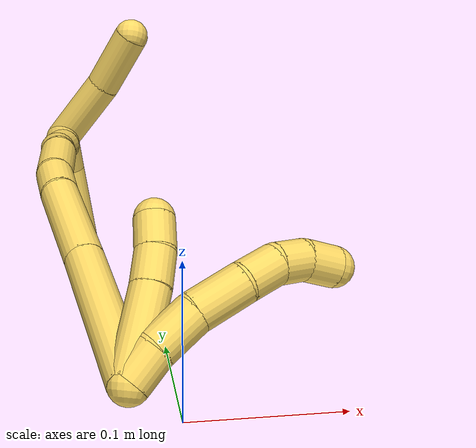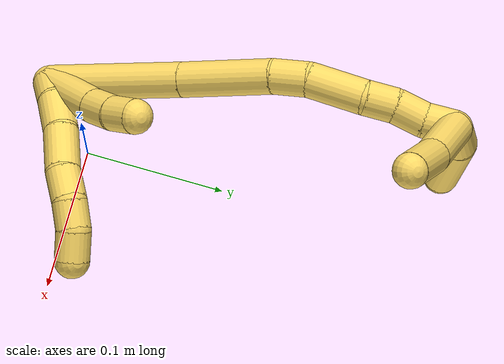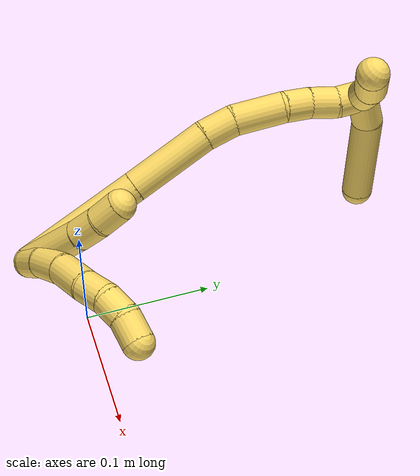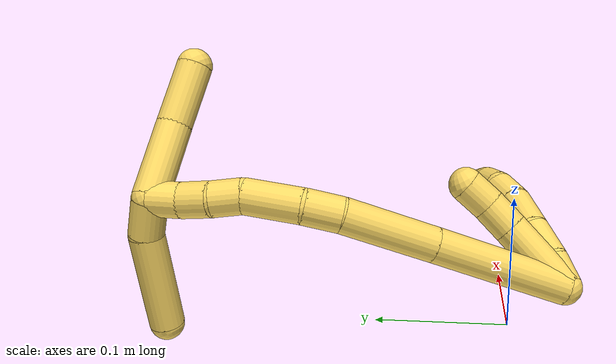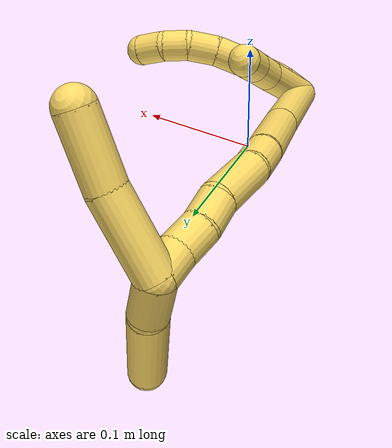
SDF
<sdf version="1.7">
 <world name="default">
  <model name="5">
   <static>0</static>
   <link name="5">
    <collision name="collision-cylinder-e_1_2_8">
     <pose>0.00601 -0.000122 0.00956 0.012729 0.561176 0.003669</pose>
     <geometry><cylinder><radius>0.0125</radius><length>0.022586</length></cylinder></geometry>
     <surface>
      <friction><ode><mu>1.16</mu><mu2>1.16</mu2><slip1>0</slip1><slip2>0</slip2></ode></friction>
      <contact><ode><kp>1e+06</kp><kd>1</kd><max_vel>0</max_vel><min_depth>0.001</min_depth></ode></contact>
     </surface>
    </collision>
    <visual name="visual-cylinder-e_1_2_8">
     <pose>0.00601 -0.000122 0.00956 0.012729 0.561176 0.003669</pose>
     <geometry><cylinder><radius>0.0125</radius><length>0.022586</length></cylinder></geometry>
     <material><ambient>1 0.858824 0.4 1</ambient></material>
    </visual>
    <collision name="collision-cylinder-e_2_8_9">
     <pose>0.02178 0.000678 0.029918 -0.08514 0.733172 -0.032705</pose>
     <geometry><cylinder><radius>0.0125</radius><length>0.029169</length></cylinder></geometry>
     <surface>
      <friction><ode><mu>1.16</mu><mu2>1.16</mu2><slip1>0</slip1><slip2>0</slip2></ode></friction>
      <contact><ode><kp>1e+06</kp><kd>1</kd><max_vel>0</max_vel><min_depth>0.001</min_depth></ode></contact>
     </surface>
    </collision>
    <visual name="visual-cylinder-e_2_8_9">
     <pose>0.02178 0.000678 0.029918 -0.08514 0.733172 -0.032705</pose>
     <geometry><cylinder><radius>0.0125</radius><length>0.029169</length></cylinder></geometry>
     <material><ambient>1 0.858824 0.4 1</ambient></material>
    </visual>
    <collision name="collision-cylinder-e_3_9_10">
     <pose>0.044813 0.002399 0.050727 -0.079656 0.92302 -0.039631</pose>
     <geometry><cylinder><radius>0.0125</radius><length>0.033287</length></cylinder></geometry>
     <surface>
      <friction><ode><mu>1.16</mu><mu2>1.16</mu2><slip1>0</slip1><slip2>0</slip2></ode></friction>
      <contact><ode><kp>1e+06</kp><kd>1</kd><max_vel>0</max_vel><min_depth>0.001</min_depth></ode></contact>
     </surface>
    </collision>
    <visual name="visual-cylinder-e_3_9_10">
     <pose>0.044813 0.002399 0.050727 -0.079656 0.92302 -0.039631</pose>
     <geometry><cylinder><radius>0.0125</radius><length>0.033287</length></cylinder></geometry>
     <material><ambient>1 0.858824 0.4 1</ambient></material>
    </visual>
    <collision name="collision-cylinder-e_4_10_11">
     <pose>0.067414 0.005938 0.067272 -0.397162 0.921272 -0.199061</pose>
     <geometry><cylinder><radius>0.0125</radius><length>0.023429</length></cylinder></geometry>
     <surface>
      <friction><ode><mu>1.16</mu><mu2>1.16</mu2><slip1>0</slip1><slip2>0</slip2></ode></friction>
      <contact><ode><kp>1e+06</kp><kd>1</kd><max_vel>0</max_vel><min_depth>0.001</min_depth></ode></contact>
     </surface>
    </collision>
    <visual name="visual-cylinder-e_4_10_11">
     <pose>0.067414 0.005938 0.067272 -0.397162 0.921272 -0.199061</pose>
     <geometry><cylinder><radius>0.0125</radius><length>0.023429</length></cylinder></geometry>
     <material><ambient>1 0.858824 0.4 1</ambient></material>
    </visual>
    <collision name="collision-cylinder-e_5_11_12">
     <pose>0.085943 0.011961 0.076603 -0.864984 1.13244 -0.570856</pose>
     <geometry><cylinder><radius>0.0125</radius><length>0.020322</length></cylinder></geometry>
     <surface>
      <friction><ode><mu>1.16</mu><mu2>1.16</mu2><slip1>0</slip1><slip2>0</slip2></ode></friction>
      <contact><ode><kp>1e+06</kp><kd>1</kd><max_vel>0</max_vel><min_depth>0.001</min_depth></ode></contact>
     </surface>
    </collision>
    <visual name="visual-cylinder-e_5_11_12">
     <pose>0.085943 0.011961 0.076603 -0.864984 1.13244 -0.570856</pose>
     <geometry><cylinder><radius>0.0125</radius><length>0.020322</length></cylinder></geometry>
     <material><ambient>1 0.858824 0.4 1</ambient></material>
    </visual>
    <collision name="collision-cylinder-e_6_12_6">
     <pose>0.105383 0.017945 0.078867 -1.76571 1.30811 -1.50124</pose>
     <geometry><cylinder><radius>0.0125</radius><length>0.021207</length></cylinder></geometry>
     <surface>
      <friction><ode><mu>1.16</mu><mu2>1.16</mu2><slip1>0</slip1><slip2>0</slip2></ode></friction>
      <contact><ode><kp>1e+06</kp><kd>1</kd><max_vel>0</max_vel><min_depth>0.001</min_depth></ode></contact>
     </surface>
    </collision>
    <visual name="visual-cylinder-e_6_12_6">
     <pose>0.105383 0.017945 0.078867 -1.76571 1.30811 -1.50124</pose>
     <geometry><cylinder><radius>0.0125</radius><length>0.021207</length></cylinder></geometry>
     <material><ambient>1 0.858824 0.4 1</ambient></material>
    </visual>
    <collision name="collision-cylinder-e_1_2_13">
     <pose>0.004233 0.007783 0.026376 -0.286951 0.152728 -0.022106</pose>
     <geometry><cylinder><radius>0.0125</radius><length>0.055649</length></cylinder></geometry>
     <surface>
      <friction><ode><mu>1.16</mu><mu2>1.16</mu2><slip1>0</slip1><slip2>0</slip2></ode></friction>
      <contact><ode><kp>1e+06</kp><kd>1</kd><max_vel>0</max_vel><min_depth>0.001</min_depth></ode></contact>
     </surface>
    </collision>
    <visual name="visual-cylinder-e_1_2_13">
     <pose>0.004233 0.007783 0.026376 -0.286951 0.152728 -0.022106</pose>
     <geometry><cylinder><radius>0.0125</radius><length>0.055649</length></cylinder></geometry>
     <material><ambient>1 0.858824 0.4 1</ambient></material>
    </visual>
    <collision name="collision-cylinder-e_2_13_14">
     <pose>0.009268 0.01888 0.063653 -0.295015 0.070303 -0.01045</pose>
     <geometry><cylinder><radius>0.0125</radius><length>0.022843</length></cylinder></geometry>
     <surface>
      <friction><ode><mu>1.16</mu><mu2>1.16</mu2><slip1>0</slip1><slip2>0</slip2></ode></friction>
      <contact><ode><kp>1e+06</kp><kd>1</kd><max_vel>0</max_vel><min_depth>0.001</min_depth></ode></contact>
     </surface>
    </collision>
    <visual name="visual-cylinder-e_2_13_14">
     <pose>0.009268 0.01888 0.063653 -0.295015 0.070303 -0.01045</pose>
     <geometry><cylinder><radius>0.0125</radius><length>0.022843</length></cylinder></geometry>
     <material><ambient>1 0.858824 0.4 1</ambient></material>
    </visual>
    <collision name="collision-cylinder-e_3_14_5">
     <pose>0.009302 0.026089 0.084548 -0.371759 -0.071522 0.013455</pose>
     <geometry><cylinder><radius>0.0125</radius><length>0.021508</length></cylinder></geometry>
     <surface>
      <friction><ode><mu>1.16</mu><mu2>1.16</mu2><slip1>0</slip1><slip2>0</slip2></ode></friction>
      <contact><ode><kp>1e+06</kp><kd>1</kd><max_vel>0</max_vel><min_depth>0.001</min_depth></ode></contact>
     </surface>
    </collision>
    <visual name="visual-cylinder-e_3_14_5">
     <pose>0.009302 0.026089 0.084548 -0.371759 -0.071522 0.013455</pose>
     <geometry><cylinder><radius>0.0125</radius><length>0.021508</length></cylinder></geometry>
     <material><ambient>1 0.858824 0.4 1</ambient></material>
    </visual>
    <collision name="collision-cylinder-e_1_2_15">
     <pose>-0.012982 0.033277 0.035461 -0.753635 -0.260868 0.103729</pose>
     <geometry><cylinder><radius>0.0125</radius><length>0.100664</length></cylinder></geometry>
     <surface>
      <friction><ode><mu>1.16</mu><mu2>1.16</mu2><slip1>0</slip1><slip2>0</slip2></ode></friction>
      <contact><ode><kp>1e+06</kp><kd>1</kd><max_vel>0</max_vel><min_depth>0.001</min_depth></ode></contact>
     </surface>
    </collision>
    <visual name="visual-cylinder-e_1_2_15">
     <pose>-0.012982 0.033277 0.035461 -0.753635 -0.260868 0.103729</pose>
     <geometry><cylinder><radius>0.0125</radius><length>0.100664</length></cylinder></geometry>
     <material><ambient>1 0.858824 0.4 1</ambient></material>
    </visual>
    <collision name="collision-cylinder-e_2_15_16">
     <pose>-0.035077 0.088811 0.094477 -0.757078 -0.274124 0.109603</pose>
     <geometry><cylinder><radius>0.0125</radius><length>0.067331</length></cylinder></geometry>
     <surface>
      <friction><ode><mu>1.16</mu><mu2>1.16</mu2><slip1>0</slip1><slip2>0</slip2></ode></friction>
      <contact><ode><kp>1e+06</kp><kd>1</kd><max_vel>0</max_vel><min_depth>0.001</min_depth></ode></contact>
     </surface>
    </collision>
    <visual name="visual-cylinder-e_2_15_16">
     <pose>-0.035077 0.088811 0.094477 -0.757078 -0.274124 0.109603</pose>
     <geometry><cylinder><radius>0.0125</radius><length>0.067331</length></cylinder></geometry>
     <material><ambient>1 0.858824 0.4 1</ambient></material>
    </visual>
    <collision name="collision-cylinder-e_3_16_17">
     <pose>-0.046302 0.120793 0.126312 -0.865493 -0.163868 0.075832</pose>
     <geometry><cylinder><radius>0.0125</radius><length>0.025888</length></cylinder></geometry>
     <surface>
      <friction><ode><mu>1.16</mu><mu2>1.16</mu2><slip1>0</slip1><slip2>0</slip2></ode></friction>
      <contact><ode><kp>1e+06</kp><kd>1</kd><max_vel>0</max_vel><min_depth>0.001</min_depth></ode></contact>
     </surface>
    </collision>
    <visual name="visual-cylinder-e_3_16_17">
     <pose>-0.046302 0.120793 0.126312 -0.865493 -0.163868 0.075832</pose>
     <geometry><cylinder><radius>0.0125</radius><length>0.025888</length></cylinder></geometry>
     <material><ambient>1 0.858824 0.4 1</ambient></material>
    </visual>
    <collision name="collision-cylinder-e_4_17_18">
     <pose>-0.047509 0.147035 0.14637 -0.951338 0.044552 -0.022953</pose>
     <geometry><cylinder><radius>0.0125</radius><length>0.040617</length></cylinder></geometry>
     <surface>
      <friction><ode><mu>1.16</mu><mu2>1.16</mu2><slip1>0</slip1><slip2>0</slip2></ode></friction>
      <contact><ode><kp>1e+06</kp><kd>1</kd><max_vel>0</max_vel><min_depth>0.001</min_depth></ode></contact>
     </surface>
    </collision>
    <visual name="visual-cylinder-e_4_17_18">
     <pose>-0.047509 0.147035 0.14637 -0.951338 0.044552 -0.022953</pose>
     <geometry><cylinder><radius>0.0125</radius><length>0.040617</length></cylinder></geometry>
     <material><ambient>1 0.858824 0.4 1</ambient></material>
    </visual>
    <collision name="collision-cylinder-e_5_18_19">
     <pose>-0.046757 0.173705 0.161948 -1.2127 -0.014104 0.009781</pose>
     <geometry><cylinder><radius>0.0125</radius><length>0.021679</length></cylinder></geometry>
     <surface>
      <friction><ode><mu>1.16</mu><mu2>1.16</mu2><slip1>0</slip1><slip2>0</slip2></ode></friction>
      <contact><ode><kp>1e+06</kp><kd>1</kd><max_vel>0</max_vel><min_depth>0.001</min_depth></ode></contact>
     </surface>
    </collision>
    <visual name="visual-cylinder-e_5_18_19">
     <pose>-0.046757 0.173705 0.161948 -1.2127 -0.014104 0.009781</pose>
     <geometry><cylinder><radius>0.0125</radius><length>0.021679</length></cylinder></geometry>
     <material><ambient>1 0.858824 0.4 1</ambient></material>
    </visual>
    <collision name="collision-cylinder-e_6_19_20">
     <pose>-0.044842 0.193958 0.170021 -1.17054 0.186301 -0.123668</pose>
     <geometry><cylinder><radius>0.0125</radius><length>0.022325</length></cylinder></geometry>
     <surface>
      <friction><ode><mu>1.16</mu><mu2>1.16</mu2><slip1>0</slip1><slip2>0</slip2></ode></friction>
      <contact><ode><kp>1e+06</kp><kd>1</kd><max_vel>0</max_vel><min_depth>0.001</min_depth></ode></contact>
     </surface>
    </collision>
    <visual name="visual-cylinder-e_6_19_20">
     <pose>-0.044842 0.193958 0.170021 -1.17054 0.186301 -0.123668</pose>
     <geometry><cylinder><radius>0.0125</radius><length>0.022325</length></cylinder></geometry>
     <material><ambient>1 0.858824 0.4 1</ambient></material>
    </visual>
    <collision name="collision-cylinder-e_7_20_1">
     <pose>-0.042976 0.213384 0.179639 -1.05033 -0.018719 0.010847</pose>
     <geometry><cylinder><radius>0.0125</radius><length>0.021496</length></cylinder></geometry>
     <surface>
      <friction><ode><mu>1.16</mu><mu2>1.16</mu2><slip1>0</slip1><slip2>0</slip2></ode></friction>
      <contact><ode><kp>1e+06</kp><kd>1</kd><max_vel>0</max_vel><min_depth>0.001</min_depth></ode></contact>
     </surface>
    </collision>
    <visual name="visual-cylinder-e_7_20_1">
     <pose>-0.042976 0.213384 0.179639 -1.05033 -0.018719 0.010847</pose>
     <geometry><cylinder><radius>0.0125</radius><length>0.021496</length></cylinder></geometry>
     <material><ambient>1 0.858824 0.4 1</ambient></material>
    </visual>
    <collision name="collision-cylinder-e_1_1_21">
     <pose>-0.030896 0.207395 0.204087 0.675653 0.464941 0.165956</pose>
     <geometry><cylinder><radius>0.0125</radius><length>0.054782</length></cylinder></geometry>
     <surface>
      <friction><ode><mu>1.16</mu><mu2>1.16</mu2><slip1>0</slip1><slip2>0</slip2></ode></friction>
      <contact><ode><kp>1e+06</kp><kd>1</kd><max_vel>0</max_vel><min_depth>0.001</min_depth></ode></contact>
     </surface>
    </collision>
    <visual name="visual-cylinder-e_1_1_21">
     <pose>-0.030896 0.207395 0.204087 0.675653 0.464941 0.165956</pose>
     <geometry><cylinder><radius>0.0125</radius><length>0.054782</length></cylinder></geometry>
     <material><ambient>1 0.858824 0.4 1</ambient></material>
    </visual>
    <collision name="collision-cylinder-e_2_21_4">
     <pose>-0.011421 0.177688 0.239072 0.736371 0.323812 0.125856</pose>
     <geometry><cylinder><radius>0.0125</radius><length>0.045218</length></cylinder></geometry>
     <surface>
      <friction><ode><mu>1.16</mu><mu2>1.16</mu2><slip1>0</slip1><slip2>0</slip2></ode></friction>
      <contact><ode><kp>1e+06</kp><kd>1</kd><max_vel>0</max_vel><min_depth>0.001</min_depth></ode></contact>
     </surface>
    </collision>
    <visual name="visual-cylinder-e_2_21_4">
     <pose>-0.011421 0.177688 0.239072 0.736371 0.323812 0.125856</pose>
     <geometry><cylinder><radius>0.0125</radius><length>0.045218</length></cylinder></geometry>
     <material><ambient>1 0.858824 0.4 1</ambient></material>
    </visual>
    <collision name="collision-cylinder-e_1_1_22">
     <pose>-0.038974 0.231331 0.174807 -2.43858 0.305274 -0.794349</pose>
     <geometry><cylinder><radius>0.0125</radius><length>0.02797</length></cylinder></geometry>
     <surface>
      <friction><ode><mu>1.16</mu><mu2>1.16</mu2><slip1>0</slip1><slip2>0</slip2></ode></friction>
      <contact><ode><kp>1e+06</kp><kd>1</kd><max_vel>0</max_vel><min_depth>0.001</min_depth></ode></contact>
     </surface>
    </collision>
    <visual name="visual-cylinder-e_1_1_22">
     <pose>-0.038974 0.231331 0.174807 -2.43858 0.305274 -0.794349</pose>
     <geometry><cylinder><radius>0.0125</radius><length>0.02797</length></cylinder></geometry>
     <material><ambient>1 0.858824 0.4 1</ambient></material>
    </visual>
    <collision name="collision-cylinder-e_2_22_3">
     <pose>-0.023203 0.252792 0.133033 -2.75569 0.326983 -1.40238</pose>
     <geometry><cylinder><radius>0.0125</radius><length>0.07203</length></cylinder></geometry>
     <surface>
      <friction><ode><mu>1.16</mu><mu2>1.16</mu2><slip1>0</slip1><slip2>0</slip2></ode></friction>
      <contact><ode><kp>1e+06</kp><kd>1</kd><max_vel>0</max_vel><min_depth>0.001</min_depth></ode></contact>
     </surface>
    </collision>
    <visual name="visual-cylinder-e_2_22_3">
     <pose>-0.023203 0.252792 0.133033 -2.75569 0.326983 -1.40238</pose>
     <geometry><cylinder><radius>0.0125</radius><length>0.07203</length></cylinder></geometry>
     <material><ambient>1 0.858824 0.4 1</ambient></material>
    </visual>
    <collision name="collision-sphere-3">
     <pose>-0.011635 0.265629 0.101434 0 -0 0</pose>
     <geometry><sphere><radius>0.0125</radius></sphere></geometry>
     <surface>
      <friction><ode><mu>1.16</mu><mu2>1.16</mu2><slip1>0</slip1><slip2>0</slip2></ode></friction>
      <contact><ode><kp>1e+06</kp><kd>1</kd><max_vel>0</max_vel><min_depth>0.001</min_depth></ode></contact>
     </surface>
    </collision>
    <visual name="visual-sphere-3">
     <pose>-0.011635 0.265629 0.101434 0 -0 0</pose>
     <geometry><sphere><radius>0.0125</radius></sphere></geometry>
     <material><ambient>1 0.858824 0.4 1</ambient></material>
    </visual>
    <collision name="collision-sphere-22">
     <pose>-0.034771 0.239954 0.164631 0 -0 0</pose>
     <geometry><sphere><radius>0.0125</radius></sphere></geometry>
     <surface>
      <friction><ode><mu>1.16</mu><mu2>1.16</mu2><slip1>0</slip1><slip2>0</slip2></ode></friction>
      <contact><ode><kp>1e+06</kp><kd>1</kd><max_vel>0</max_vel><min_depth>0.001</min_depth></ode></contact>
     </surface>
    </collision>
    <visual name="visual-sphere-22">
     <pose>-0.034771 0.239954 0.164631 0 -0 0</pose>
     <geometry><sphere><radius>0.0125</radius></sphere></geometry>
     <material><ambient>1 0.858824 0.4 1</ambient></material>
    </visual>
    <collision name="collision-sphere-4">
     <pose>-0.004227 0.163293 0.254953 0 -0 0</pose>
     <geometry><sphere><radius>0.0125</radius></sphere></geometry>
     <surface>
      <friction><ode><mu>1.16</mu><mu2>1.16</mu2><slip1>0</slip1><slip2>0</slip2></ode></friction>
      <contact><ode><kp>1e+06</kp><kd>1</kd><max_vel>0</max_vel><min_depth>0.001</min_depth></ode></contact>
     </surface>
    </collision>
    <visual name="visual-sphere-4">
     <pose>-0.004227 0.163293 0.254953 0 -0 0</pose>
     <geometry><sphere><radius>0.0125</radius></sphere></geometry>
     <material><ambient>1 0.858824 0.4 1</ambient></material>
    </visual>
    <collision name="collision-sphere-21">
     <pose>-0.018615 0.192083 0.223191 0 -0 0</pose>
     <geometry><sphere><radius>0.0125</radius></sphere></geometry>
     <surface>
      <friction><ode><mu>1.16</mu><mu2>1.16</mu2><slip1>0</slip1><slip2>0</slip2></ode></friction>
      <contact><ode><kp>1e+06</kp><kd>1</kd><max_vel>0</max_vel><min_depth>0.001</min_depth></ode></contact>
     </surface>
    </collision>
    <visual name="visual-sphere-21">
     <pose>-0.018615 0.192083 0.223191 0 -0 0</pose>
     <geometry><sphere><radius>0.0125</radius></sphere></geometry>
     <material><ambient>1 0.858824 0.4 1</ambient></material>
    </visual>
    <collision name="collision-sphere-1">
     <pose>-0.043177 0.222707 0.184983 0 -0 0</pose>
     <geometry><sphere><radius>0.0125</radius></sphere></geometry>
     <surface>
      <friction><ode><mu>1.16</mu><mu2>1.16</mu2><slip1>0</slip1><slip2>0</slip2></ode></friction>
      <contact><ode><kp>1e+06</kp><kd>1</kd><max_vel>0</max_vel><min_depth>0.001</min_depth></ode></contact>
     </surface>
    </collision>
    <visual name="visual-sphere-1">
     <pose>-0.043177 0.222707 0.184983 0 -0 0</pose>
     <geometry><sphere><radius>0.0125</radius></sphere></geometry>
     <material><ambient>1 0.858824 0.4 1</ambient></material>
    </visual>
    <collision name="collision-sphere-12">
     <pose>0.095143 0.015244 0.0794 0 -0 0</pose>
     <geometry><sphere><radius>0.0125</radius></sphere></geometry>
     <surface>
      <friction><ode><mu>1.16</mu><mu2>1.16</mu2><slip1>0</slip1><slip2>0</slip2></ode></friction>
      <contact><ode><kp>1e+06</kp><kd>1</kd><max_vel>0</max_vel><min_depth>0.001</min_depth></ode></contact>
     </surface>
    </collision>
    <visual name="visual-sphere-12">
     <pose>0.095143 0.015244 0.0794 0 -0 0</pose>
     <geometry><sphere><radius>0.0125</radius></sphere></geometry>
     <material><ambient>1 0.858824 0.4 1</ambient></material>
    </visual>
    <collision name="collision-sphere-11">
     <pose>0.076743 0.008679 0.073805 0 -0 0</pose>
     <geometry><sphere><radius>0.0125</radius></sphere></geometry>
     <surface>
      <friction><ode><mu>1.16</mu><mu2>1.16</mu2><slip1>0</slip1><slip2>0</slip2></ode></friction>
      <contact><ode><kp>1e+06</kp><kd>1</kd><max_vel>0</max_vel><min_depth>0.001</min_depth></ode></contact>
     </surface>
    </collision>
    <visual name="visual-sphere-11">
     <pose>0.076743 0.008679 0.073805 0 -0 0</pose>
     <geometry><sphere><radius>0.0125</radius></sphere></geometry>
     <material><ambient>1 0.858824 0.4 1</ambient></material>
    </visual>
    <collision name="collision-sphere-10">
     <pose>0.058085 0.003198 0.060738 0 -0 0</pose>
     <geometry><sphere><radius>0.0125</radius></sphere></geometry>
     <surface>
      <friction><ode><mu>1.16</mu><mu2>1.16</mu2><slip1>0</slip1><slip2>0</slip2></ode></friction>
      <contact><ode><kp>1e+06</kp><kd>1</kd><max_vel>0</max_vel><min_depth>0.001</min_depth></ode></contact>
     </surface>
    </collision>
    <visual name="visual-sphere-10">
     <pose>0.058085 0.003198 0.060738 0 -0 0</pose>
     <geometry><sphere><radius>0.0125</radius></sphere></geometry>
     <material><ambient>1 0.858824 0.4 1</ambient></material>
    </visual>
    <collision name="collision-sphere-9">
     <pose>0.031541 0.0016 0.040716 0 -0 0</pose>
     <geometry><sphere><radius>0.0125</radius></sphere></geometry>
     <surface>
      <friction><ode><mu>1.16</mu><mu2>1.16</mu2><slip1>0</slip1><slip2>0</slip2></ode></friction>
      <contact><ode><kp>1e+06</kp><kd>1</kd><max_vel>0</max_vel><min_depth>0.001</min_depth></ode></contact>
     </surface>
    </collision>
    <visual name="visual-sphere-9">
     <pose>0.031541 0.0016 0.040716 0 -0 0</pose>
     <geometry><sphere><radius>0.0125</radius></sphere></geometry>
     <material><ambient>1 0.858824 0.4 1</ambient></material>
    </visual>
    <collision name="collision-sphere-2">
     <geometry><sphere><radius>0.0125</radius></sphere></geometry>
     <surface>
      <friction><ode><mu>1.16</mu><mu2>1.16</mu2><slip1>0</slip1><slip2>0</slip2></ode></friction>
      <contact><ode><kp>1e+06</kp><kd>1</kd><max_vel>0</max_vel><min_depth>0.001</min_depth></ode></contact>
     </surface>
    </collision>
    <visual name="visual-sphere-2">
     <geometry><sphere><radius>0.0125</radius></sphere></geometry>
     <material><ambient>1 0.858824 0.4 1</ambient></material>
    </visual>
    <collision name="collision-sphere-19">
     <pose>-0.04691 0.183856 0.165747 0 -0 0</pose>
     <geometry><sphere><radius>0.0125</radius></sphere></geometry>
     <surface>
      <friction><ode><mu>1.16</mu><mu2>1.16</mu2><slip1>0</slip1><slip2>0</slip2></ode></friction>
      <contact><ode><kp>1e+06</kp><kd>1</kd><max_vel>0</max_vel><min_depth>0.001</min_depth></ode></contact>
     </surface>
    </collision>
    <visual name="visual-sphere-19">
     <pose>-0.04691 0.183856 0.165747 0 -0 0</pose>
     <geometry><sphere><radius>0.0125</radius></sphere></geometry>
     <material><ambient>1 0.858824 0.4 1</ambient></material>
    </visual>
    <collision name="collision-sphere-8">
     <pose>0.01202 -0.000243 0.019121 0 -0 0</pose>
     <geometry><sphere><radius>0.0125</radius></sphere></geometry>
     <surface>
      <friction><ode><mu>1.16</mu><mu2>1.16</mu2><slip1>0</slip1><slip2>0</slip2></ode></friction>
      <contact><ode><kp>1e+06</kp><kd>1</kd><max_vel>0</max_vel><min_depth>0.001</min_depth></ode></contact>
     </surface>
    </collision>
    <visual name="visual-sphere-8">
     <pose>0.01202 -0.000243 0.019121 0 -0 0</pose>
     <geometry><sphere><radius>0.0125</radius></sphere></geometry>
     <material><ambient>1 0.858824 0.4 1</ambient></material>
    </visual>
    <collision name="collision-sphere-6">
     <pose>0.115623 0.020647 0.078334 0 -0 0</pose>
     <geometry><sphere><radius>0.0125</radius></sphere></geometry>
     <surface>
      <friction><ode><mu>1.16</mu><mu2>1.16</mu2><slip1>0</slip1><slip2>0</slip2></ode></friction>
      <contact><ode><kp>1e+06</kp><kd>1</kd><max_vel>0</max_vel><min_depth>0.001</min_depth></ode></contact>
     </surface>
    </collision>
    <visual name="visual-sphere-6">
     <pose>0.115623 0.020647 0.078334 0 -0 0</pose>
     <geometry><sphere><radius>0.0125</radius></sphere></geometry>
     <material><ambient>1 0.858824 0.4 1</ambient></material>
    </visual>
    <collision name="collision-sphere-13">
     <pose>0.008466 0.015567 0.052752 0 -0 0</pose>
     <geometry><sphere><radius>0.0125</radius></sphere></geometry>
     <surface>
      <friction><ode><mu>1.16</mu><mu2>1.16</mu2><slip1>0</slip1><slip2>0</slip2></ode></friction>
      <contact><ode><kp>1e+06</kp><kd>1</kd><max_vel>0</max_vel><min_depth>0.001</min_depth></ode></contact>
     </surface>
    </collision>
    <visual name="visual-sphere-13">
     <pose>0.008466 0.015567 0.052752 0 -0 0</pose>
     <geometry><sphere><radius>0.0125</radius></sphere></geometry>
     <material><ambient>1 0.858824 0.4 1</ambient></material>
    </visual>
    <collision name="collision-sphere-14">
     <pose>0.010071 0.022192 0.074555 0 -0 0</pose>
     <geometry><sphere><radius>0.0125</radius></sphere></geometry>
     <surface>
      <friction><ode><mu>1.16</mu><mu2>1.16</mu2><slip1>0</slip1><slip2>0</slip2></ode></friction>
      <contact><ode><kp>1e+06</kp><kd>1</kd><max_vel>0</max_vel><min_depth>0.001</min_depth></ode></contact>
     </surface>
    </collision>
    <visual name="visual-sphere-14">
     <pose>0.010071 0.022192 0.074555 0 -0 0</pose>
     <geometry><sphere><radius>0.0125</radius></sphere></geometry>
     <material><ambient>1 0.858824 0.4 1</ambient></material>
    </visual>
    <collision name="collision-sphere-5">
     <pose>0.008534 0.029985 0.094542 0 -0 0</pose>
     <geometry><sphere><radius>0.0125</radius></sphere></geometry>
     <surface>
      <friction><ode><mu>1.16</mu><mu2>1.16</mu2><slip1>0</slip1><slip2>0</slip2></ode></friction>
      <contact><ode><kp>1e+06</kp><kd>1</kd><max_vel>0</max_vel><min_depth>0.001</min_depth></ode></contact>
     </surface>
    </collision>
    <visual name="visual-sphere-5">
     <pose>0.008534 0.029985 0.094542 0 -0 0</pose>
     <geometry><sphere><radius>0.0125</radius></sphere></geometry>
     <material><ambient>1 0.858824 0.4 1</ambient></material>
    </visual>
    <collision name="collision-sphere-15">
     <pose>-0.025963 0.066553 0.070921 0 -0 0</pose>
     <geometry><sphere><radius>0.0125</radius></sphere></geometry>
     <surface>
      <friction><ode><mu>1.16</mu><mu2>1.16</mu2><slip1>0</slip1><slip2>0</slip2></ode></friction>
      <contact><ode><kp>1e+06</kp><kd>1</kd><max_vel>0</max_vel><min_depth>0.001</min_depth></ode></contact>
     </surface>
    </collision>
    <visual name="visual-sphere-15">
     <pose>-0.025963 0.066553 0.070921 0 -0 0</pose>
     <geometry><sphere><radius>0.0125</radius></sphere></geometry>
     <material><ambient>1 0.858824 0.4 1</ambient></material>
    </visual>
    <collision name="collision-sphere-16">
     <pose>-0.04419 0.11107 0.118033 0 -0 0</pose>
     <geometry><sphere><radius>0.0125</radius></sphere></geometry>
     <surface>
      <friction><ode><mu>1.16</mu><mu2>1.16</mu2><slip1>0</slip1><slip2>0</slip2></ode></friction>
      <contact><ode><kp>1e+06</kp><kd>1</kd><max_vel>0</max_vel><min_depth>0.001</min_depth></ode></contact>
     </surface>
    </collision>
    <visual name="visual-sphere-16">
     <pose>-0.04419 0.11107 0.118033 0 -0 0</pose>
     <geometry><sphere><radius>0.0125</radius></sphere></geometry>
     <material><ambient>1 0.858824 0.4 1</ambient></material>
    </visual>
    <collision name="collision-sphere-17">
     <pose>-0.048413 0.130517 0.134591 0 -0 0</pose>
     <geometry><sphere><radius>0.0125</radius></sphere></geometry>
     <surface>
      <friction><ode><mu>1.16</mu><mu2>1.16</mu2><slip1>0</slip1><slip2>0</slip2></ode></friction>
      <contact><ode><kp>1e+06</kp><kd>1</kd><max_vel>0</max_vel><min_depth>0.001</min_depth></ode></contact>
     </surface>
    </collision>
    <visual name="visual-sphere-17">
     <pose>-0.048413 0.130517 0.134591 0 -0 0</pose>
     <geometry><sphere><radius>0.0125</radius></sphere></geometry>
     <material><ambient>1 0.858824 0.4 1</ambient></material>
    </visual>
    <collision name="collision-sphere-18">
     <pose>-0.046604 0.163554 0.158149 0 -0 0</pose>
     <geometry><sphere><radius>0.0125</radius></sphere></geometry>
     <surface>
      <friction><ode><mu>1.16</mu><mu2>1.16</mu2><slip1>0</slip1><slip2>0</slip2></ode></friction>
      <contact><ode><kp>1e+06</kp><kd>1</kd><max_vel>0</max_vel><min_depth>0.001</min_depth></ode></contact>
     </surface>
    </collision>
    <visual name="visual-sphere-18">
     <pose>-0.046604 0.163554 0.158149 0 -0 0</pose>
     <geometry><sphere><radius>0.0125</radius></sphere></geometry>
     <material><ambient>1 0.858824 0.4 1</ambient></material>
    </visual>
    <collision name="collision-sphere-20">
     <pose>-0.042775 0.204061 0.174295 0 -0 0</pose>
     <geometry><sphere><radius>0.0125</radius></sphere></geometry>
     <surface>
      <friction><ode><mu>1.16</mu><mu2>1.16</mu2><slip1>0</slip1><slip2>0</slip2></ode></friction>
      <contact><ode><kp>1e+06</kp><kd>1</kd><max_vel>0</max_vel><min_depth>0.001</min_depth></ode></contact>
     </surface>
    </collision>
    <visual name="visual-sphere-20">
     <pose>-0.042775 0.204061 0.174295 0 -0 0</pose>
     <geometry><sphere><radius>0.0125</radius></sphere></geometry>
     <material><ambient>1 0.858824 0.4 1</ambient></material>
    </visual>
    <inertial>
     <pose>-0.008313 0.103296 0.105466 0 -0 0</pose>
     <mass>0.75</mass>
     <inertia>
      <ixx>0.000177</ixx>
      <ixy>0</ixy>
      <ixz>0</ixz>
      <iyy>0.000146</iyy>
      <iyz>0</iyz>
      <izz>-7.5e-05</izz>
     </inertia>
    </inertial>
   </link>
   <pose>-0.032824 -0.035082 0.046282 -0.483045 0.177088 0.001842</pose>
  </model>
 </world>
</sdf>
